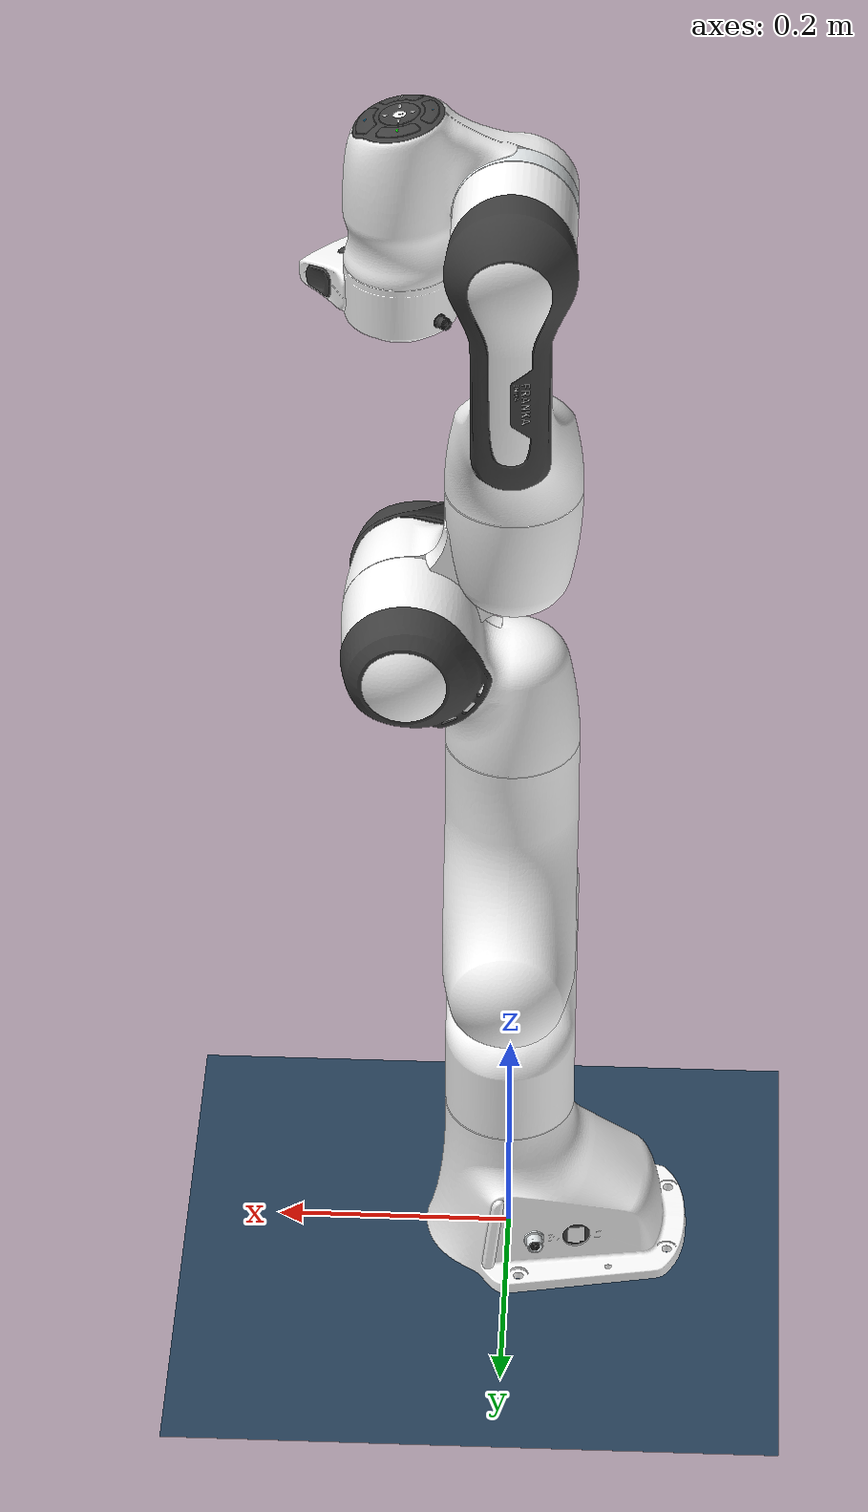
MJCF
<mujoco model="panda scene">
  <include file="mjx_panda_nohand.xml"/>

  <statistic center="0.3 0 0.4" extent="1"/>

  <visual>
    <headlight diffuse="0.6 0.6 0.6" ambient="0.3 0.3 0.3" specular="0 0 0"/>
    <rgba haze="0.15 0.25 0.35 1"/>
    <global azimuth="120" elevation="-20"/>
  </visual>

  <asset>
    <texture type="skybox" builtin="gradient" rgb1="0.3 0.5 0.7" rgb2="0 0 0" width="512" height="3072"/>
    <texture type="2d" name="groundplane" builtin="checker" mark="edge" rgb1="0.2 0.3 0.4" rgb2="0.1 0.2 0.3"
      markrgb="0.8 0.8 0.8" width="300" height="300"/>
    <material name="groundplane" texture="groundplane" texuniform="true" texrepeat="5 5" reflectance="0.2"/>
  </asset>

  <worldbody>
    <light pos="0 0 1.5" dir="0 0 -1" directional="true"/>
    <geom name="floor" size="0 0 0.05" type="plane" material="groundplane"/>
  </worldbody>
</mujoco>

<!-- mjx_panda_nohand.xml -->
<mujoco model="panda">
  <option timestep="0.001" solver="Newton" gravity="0 0 -9.81"/>
  <compiler angle="radian" eulerseq="zyx" meshdir="assets" autolimits="true"/>

  <default>
    <default class="panda">
      <material specular="0.5" shininess="0.25"/>
      <joint armature="0.1" damping="0.0" axis="0 0 1" range="-10 10"/>
      <general dyntype="none" biastype="affine" ctrlrange="-10 10" forcerange="-87 87"/>
      <position forcerange="-100 100"/>
      <default class="finger">
        <joint axis="0 1 0" type="slide" range="0 0.04"/>
      </default>

      <default class="visual">
        <geom type="mesh" contype="0" conaffinity="0" group="2"/>
      </default>
      <default class="collision">
        <geom group="3" type="mesh" contype="0" conaffinity="0"/>
      </default>
    </default>
  </default>

  <asset>
    <material class="panda" name="white" rgba="1 1 1 1"/>
    <material class="panda" name="off_white" rgba="0.901961 0.921569 0.929412 1"/>
    <material class="panda" name="black" rgba="0.25 0.25 0.25 1"/>
    <material class="panda" name="green" rgba="0 1 0 1"/>
    <material class="panda" name="light_blue" rgba="0.039216 0.541176 0.780392 1"/>

    <!-- Collision meshes -->
    <mesh name="link0_c" file="link0.stl"/>
    <mesh name="link1_c" file="link1.stl"/>
    <mesh name="link2_c" file="link2.stl"/>
    <mesh name="link3_c" file="link3.stl"/>
    <mesh name="link4_c" file="link4.stl"/>
    <mesh name="link5_c0" file="link5_collision_0.obj"/>
    <mesh name="link5_c1" file="link5_collision_1.obj"/>
    <mesh name="link5_c2" file="link5_collision_2.obj"/>
    <mesh name="link6_c" file="link6.stl"/>
    <mesh name="link7_c" file="link7.stl"/>

    <!-- Visual meshes -->
    <mesh file="link0_0.obj"/>
    <mesh file="link0_1.obj"/>
    <mesh file="link0_2.obj"/>
    <mesh file="link0_3.obj"/>
    <mesh file="link0_4.obj"/>
    <mesh file="link0_5.obj"/>
    <mesh file="link0_7.obj"/>
    <mesh file="link0_8.obj"/>
    <mesh file="link0_9.obj"/>
    <mesh file="link0_10.obj"/>
    <mesh file="link0_11.obj"/>
    <mesh file="link1.obj"/>
    <mesh file="link2.obj"/>
    <mesh file="link3_0.obj"/>
    <mesh file="link3_1.obj"/>
    <mesh file="link3_2.obj"/>
    <mesh file="link3_3.obj"/>
    <mesh file="link4_0.obj"/>
    <mesh file="link4_1.obj"/>
    <mesh file="link4_2.obj"/>
    <mesh file="link4_3.obj"/>
    <mesh file="link5_0.obj"/>
    <mesh file="link5_1.obj"/>
    <mesh file="link5_2.obj"/>
    <mesh file="link6_0.obj"/>
    <mesh file="link6_1.obj"/>
    <mesh file="link6_2.obj"/>
    <mesh file="link6_3.obj"/>
    <mesh file="link6_4.obj"/>
    <mesh file="link6_5.obj"/>
    <mesh file="link6_6.obj"/>
    <mesh file="link6_7.obj"/>
    <mesh file="link6_8.obj"/>
    <mesh file="link6_9.obj"/>
    <mesh file="link6_10.obj"/>
    <mesh file="link6_11.obj"/>
    <mesh file="link6_12.obj"/>
    <mesh file="link6_13.obj"/>
    <mesh file="link6_14.obj"/>
    <mesh file="link6_15.obj"/>
    <mesh file="link6_16.obj"/>
    <mesh file="link7_0.obj"/>
    <mesh file="link7_1.obj"/>
    <mesh file="link7_2.obj"/>
    <mesh file="link7_3.obj"/>
    <mesh file="link7_4.obj"/>
    <mesh file="link7_5.obj"/>
    <mesh file="link7_6.obj"/>
    <mesh file="link7_7.obj"/>
  </asset>

  <worldbody>
    <light name="top" pos="0 0 2" mode="trackcom"/>
    <body name="link0" childclass="panda">
      <inertial mass="0.629769" pos="-0.041018 -0.00014 0.049974"
        fullinertia="0.00315 0.00388 0.004285 8.2904e-7 0.00015 8.2299e-6"/>
      <geom mesh="link0_0" material="off_white" class="visual"/>
      <geom mesh="link0_1" material="black" class="visual"/>
      <geom mesh="link0_2" material="off_white" class="visual"/>
      <geom mesh="link0_3" material="black" class="visual"/>
      <geom mesh="link0_4" material="off_white" class="visual"/>
      <geom mesh="link0_5" material="black" class="visual"/>
      <geom mesh="link0_7" material="white" class="visual"/>
      <geom mesh="link0_8" material="white" class="visual"/>
      <geom mesh="link0_9" material="black" class="visual"/>
      <geom mesh="link0_10" material="off_white" class="visual"/>
      <geom mesh="link0_11" material="white" class="visual"/>
      <geom mesh="link0_c" class="collision"/>
      <body name="link1" pos="0 0 0.333">
        <inertial mass="4.970684" pos="0.003875 0.002081 -0.04762"
          fullinertia="0.70337 0.70661 0.0091170 -0.00013900 0.0067720 0.019169"/>
        <joint name="joint1" damping="0.0"/>
        <geom material="white" mesh="link1" class="visual"/>
        <geom mesh="link1_c" class="collision"/>
        <body name="link2" quat="1 -1 0 0">
          <inertial mass="0.646926" pos="-0.003141 -0.02872 0.003495"
            fullinertia="0.0079620 2.8110e-2 2.5995e-2 -3.925e-3 1.0254e-2 7.04e-4"/>
          <joint name="joint2" range="-1.7628 1.7628" damping="0.0"/>
          <geom material="white" mesh="link2" class="visual"/>
          <geom mesh="link2_c" class="collision"/>
          <body name="link3" pos="0 -0.316 0" quat="1 1 0 0">
            <joint name="joint3" damping="0.0"/>
            <inertial mass="3.228604" pos="2.7518e-2 3.9252e-2 -6.6502e-2"
              fullinertia="3.7242e-2 3.6155e-2 1.083e-2 -4.761e-3 -1.1396e-2 -1.2805e-2"/>
            <geom mesh="link3_0" material="white" class="visual"/>
            <geom mesh="link3_1" material="white" class="visual"/>
            <geom mesh="link3_2" material="white" class="visual"/>
            <geom mesh="link3_3" material="black" class="visual"/>
            <geom mesh="link3_c" class="collision"/>
            <body name="link4" pos="0.0825 0 0" quat="1 1 0 0">
              <inertial mass="3.587895" pos="-5.317e-2 1.04419e-1 2.7454e-2"
                fullinertia="2.5853e-2 1.9552e-2 2.8323e-2 7.796e-3 -1.332e-3 8.641e-3"/>
              <joint name="joint4" range="-3.0718 -0.0698" damping="0.0"/>
              <geom mesh="link4_0" material="white" class="visual"/>
              <geom mesh="link4_1" material="white" class="visual"/>
              <geom mesh="link4_2" material="black" class="visual"/>
              <geom mesh="link4_3" material="white" class="visual"/>
              <geom mesh="link4_c" class="collision"/>
              <body name="link5" pos="-0.0825 0.384 0" quat="1 -1 0 0">
                <inertial mass="1.225946" pos="-1.1953e-2 4.1065e-2 -3.8437e-2"
                  fullinertia="3.5549e-2 2.9474e-2 8.627e-3 -2.117e-3 -4.037e-3 2.29e-4"/>
                <joint name="joint5" damping="0.0"/>
                <geom mesh="link5_0" material="black" class="visual"/>
                <geom mesh="link5_1" material="white" class="visual"/>
                <geom mesh="link5_2" material="white" class="visual"/>
                <geom mesh="link5_c0" class="collision"/>
                <geom mesh="link5_c1" class="collision"/>
                <geom mesh="link5_c2" class="collision"/>
                <body name="link6" quat="1 1 0 0">
                  <inertial mass="1.666555" pos="6.0149e-2 -1.4117e-2 -1.0517e-2"
                    fullinertia="1.964e-3 4.354e-3 5.433e-3 1.09e-4 -1.158e-3 3.41e-4"/>
                  <joint name="joint6" range="-0.0175 3.7525" damping="0.0"/>
                  <geom mesh="link6_0" material="off_white" class="visual"/>
                  <geom mesh="link6_1" material="white" class="visual"/>
                  <geom mesh="link6_2" material="black" class="visual"/>
                  <geom mesh="link6_3" material="white" class="visual"/>
                  <geom mesh="link6_4" material="white" class="visual"/>
                  <geom mesh="link6_5" material="white" class="visual"/>
                  <geom mesh="link6_6" material="white" class="visual"/>
                  <geom mesh="link6_7" material="light_blue" class="visual"/>
                  <geom mesh="link6_8" material="light_blue" class="visual"/>
                  <geom mesh="link6_9" material="black" class="visual"/>
                  <geom mesh="link6_10" material="black" class="visual"/>
                  <geom mesh="link6_11" material="white" class="visual"/>
                  <geom mesh="link6_12" material="green" class="visual"/>
                  <geom mesh="link6_13" material="white" class="visual"/>
                  <geom mesh="link6_14" material="black" class="visual"/>
                  <geom mesh="link6_15" material="black" class="visual"/>
                  <geom mesh="link6_16" material="white" class="visual"/>
                  <geom mesh="link6_c" class="collision"/>
                  <body name="link7" pos="0.088 0 0" quat="1 1 0 0">
                    <inertial mass="7.35522e-01" pos="1.0517e-2 -4.252e-3 6.1597e-2"
                      fullinertia="1.2516e-2 1.0027e-2 4.815e-3 -4.28e-4 -1.196e-3 -7.41e-4"/>
                    <joint name="joint7" damping="0.0"/>
                    <geom mesh="link7_0" material="white" class="visual"/>
                    <geom mesh="link7_1" material="black" class="visual"/>
                    <geom mesh="link7_2" material="black" class="visual"/>
                    <geom mesh="link7_3" material="black" class="visual"/>
                    <geom mesh="link7_4" material="black" class="visual"/>
                    <geom mesh="link7_5" material="black" class="visual"/>
                    <geom mesh="link7_6" material="black" class="visual"/>
                    <geom mesh="link7_7" material="white" class="visual"/>
                    <geom mesh="link7_c" class="collision"/>
                    <site name='attachment_site' size="0.03" material="green" class="visual"/>
                    <!-- pos="0.0 0 0.08 "  -->
                  </body>
                </body>
              </body>
            </body>
          </body>
        </body>
      </body>
    </body>
  </worldbody>

  <actuator>
    <motor name="joint1_tau" joint="joint1" ctrlrange="-100 100"/>
    <motor name="joint2_tau" joint="joint2" ctrlrange="-100 100"/>
    <motor name="joint3_tau" joint="joint3" ctrlrange="-100 100"/>
    <motor name="joint4_tau" joint="joint4" ctrlrange="-100 100"/>
    <motor name="joint5_tau" joint="joint5" ctrlrange="-100 100"/>
    <motor name="joint6_tau" joint="joint6" ctrlrange="-100 100"/>
    <motor name="joint7_tau" joint="joint7" ctrlrange="-100 100"/>
  </actuator>
</mujoco>
